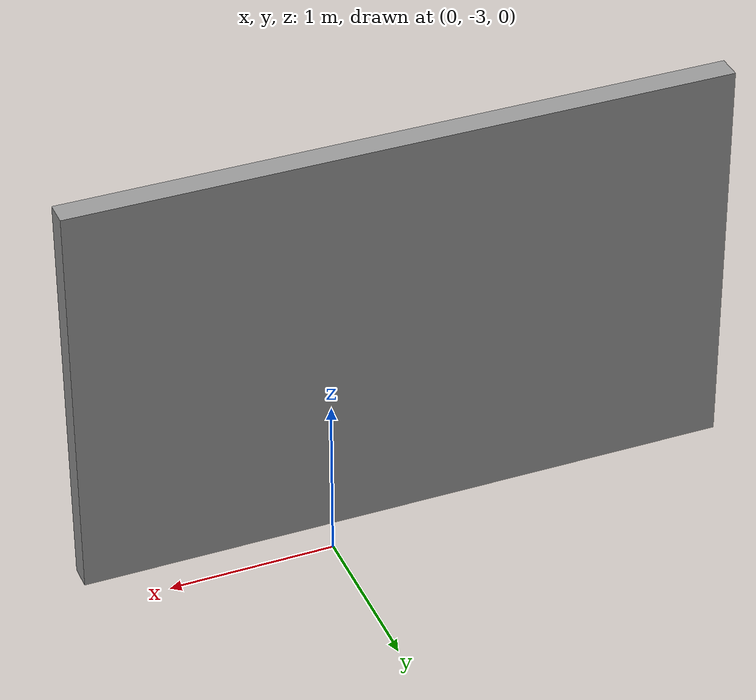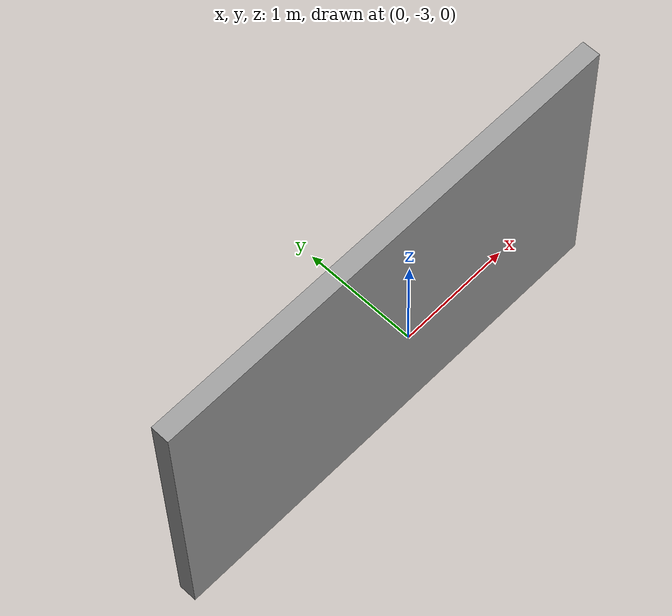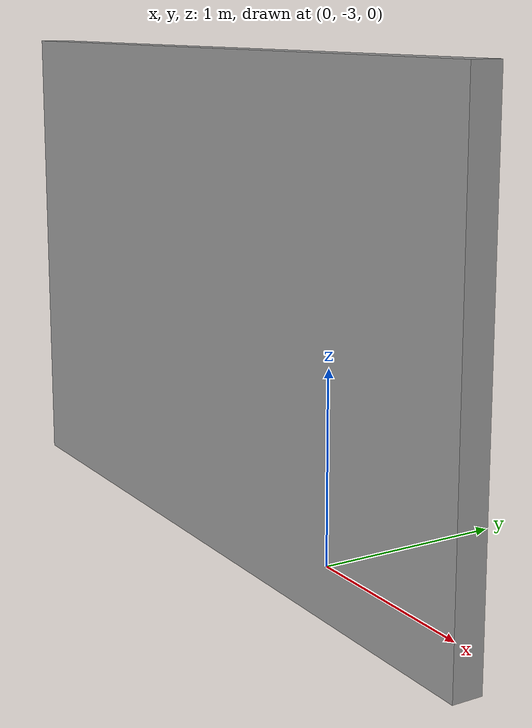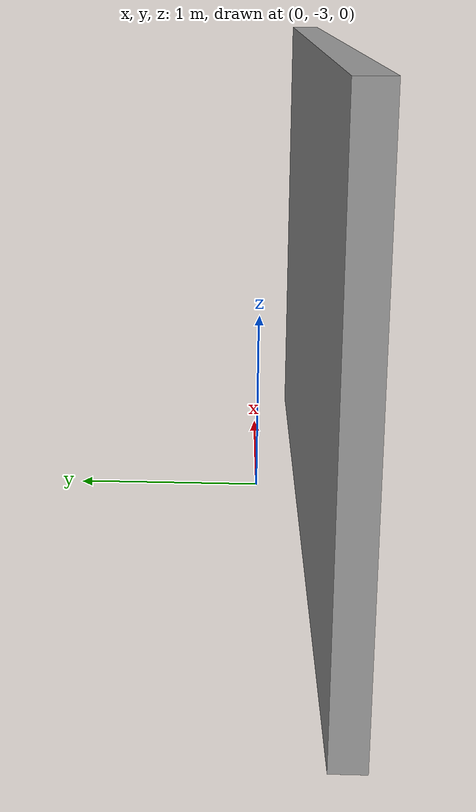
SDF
<?xml version='1.0'?>
<sdf version='1.7'>
  <model name='ustbot_lv2'>
    <pose>-0.555 -1.6825 0 0 -0 0</pose>
    <link name='Wall_0'>
      <collision name='Wall_0_Collision'>
        <geometry>
          <box>
            <size>4 0.15 2.5</size>
          </box>
        </geometry>
        <pose>0 0 1.25 0 -0 0</pose>
      </collision>
      <visual name='Wall_0_Visual'>
        <pose>0 0 1.25 0 -0 0</pose>
        <geometry>
          <box>
            <size>4 0.15 2.5</size>
          </box>
        </geometry>
        <material>
          <script>
            <uri>file://media/materials/scripts/gazebo.material</uri>
            <name>Gazebo/Grey</name>
          </script>
          <ambient>1 1 1 1</ambient>
        </material>
        <meta>
          <layer>0</layer>
        </meta>
      </visual>
      <pose>0 -1.6075 0 0 -0 3.14159</pose>
    </link>
    <static>1</static>
  </model>
</sdf>
